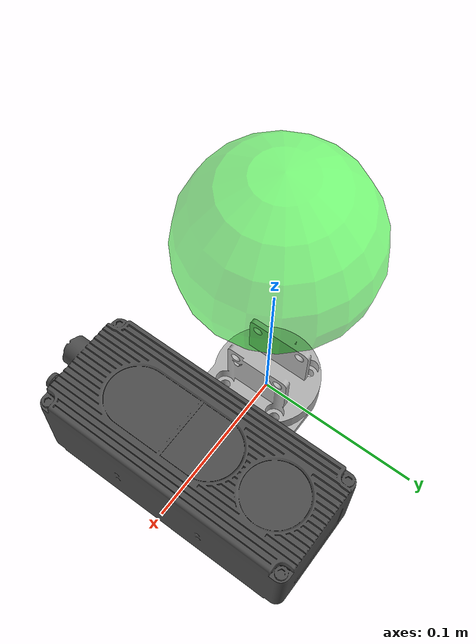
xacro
<?xml version="1.0"?>

<robot xmlns:xacro="http://www.ros.org/wiki/xacro">

    <!-- Bracket -->

    <link name="bracket_link">

        <!-- VISUAL -->
        <visual>
            <origin xyz="0 0 0" rpy="0 0 0"/>

            <geometry>
                <mesh
                    filename="package://robot_moveit_config/models/End_Effector_Bracket_4.2.2026.stl"
                    scale="0.001 0.001 0.001"/>
            </geometry>

            <material name="gray">
                <color rgba="0.7 0.7 0.7 1.0"/>
            </material>
        </visual>

        <!-- COLLISION -->
        <collision>
            <origin xyz="0 0 0" rpy="0 0 0"/>

            <geometry>
                <mesh
                    filename="package://robot_moveit_config/models/End_Effector_Bracket_4.2.2026.stl"
                    scale="0.001 0.001 0.001"/>
            </geometry>
        </collision>

    </link>

    <!-- Camera -->

    <link name="camera_link">

        <!-- VISUAL -->
        <visual>
            <origin xyz="0 0 0" rpy="0 0 0"/>

            <geometry>
                <mesh
                    filename="package://robot_moveit_config/models/DS87-Mechanical_Outline_3D.STP.stl"
                    scale="0.002 0.002 0.002"/>
            </geometry>

            <material name="gray">
                <color rgba="0.3 0.3 0.3 1.0"/>
            </material>
        </visual>

        <!-- COLLISION -->
        <collision>
            <origin xyz="0 0 0" rpy="0 0 0"/>

            <geometry>
                <mesh
                    filename="package://robot_moveit_config/models/DS87-Mechanical_Outline_3D.STP.stl"
                    scale="0.002 0.002 0.002"/>
            </geometry>
        </collision>

    </link>

    <!-- Suction Sphere -->

    <link name="suction_link">

        <!-- VISUAL -->
        <visual>
            <origin xyz="0 0 0" rpy="0 0 0"/>

            <geometry>
                <sphere radius="0.05"/>
            </geometry>

            <material name="green">
                <color rgba="0 1.0 0 0.5"/>
            </material>
        </visual>

        <!-- COLLISION -->
        <collision>
            <origin xyz="0 0 0" rpy="0 0 0"/>

            <geometry>
                <sphere radius="0.05"/>
            </geometry>
        </collision>

    </link>

    <!-- TOOL CENTER POINT (TCP) -->

    <link name="tool_frame"/>

    <!-- JOINTS -->

    <!-- Camera Mount -->
    <joint name="camera_joint" type="fixed">

        <parent link="bracket_link"/>
        <child link="camera_link"/>

        <origin
            xyz="0.0675 0 0.0254"
            rpy="1.57079633 0 1.57079633"/>

    </joint>

    <!-- Suction Mount -->
    <joint name="suction_joint" type="fixed">

        <parent link="bracket_link"/>
        <child link="suction_link"/>

        <origin
            xyz="0 0 0.14605"
            rpy="0 0 0"/>

    </joint>

    <!-- Tool Frame -->
    <joint name="tool_frame_joint" type="fixed">

        <parent link="suction_link"/>
        <child link="tool_frame"/>

        <!-- TCP location -->
        <origin
            xyz="0 0 0.05"
            rpy="0 0 0"/>

    </joint>

</robot>
